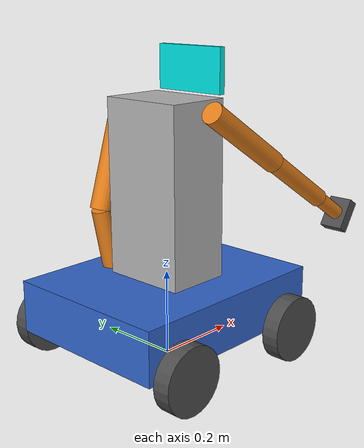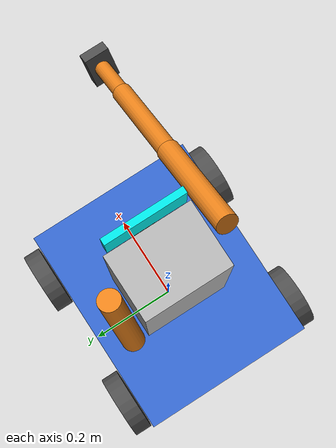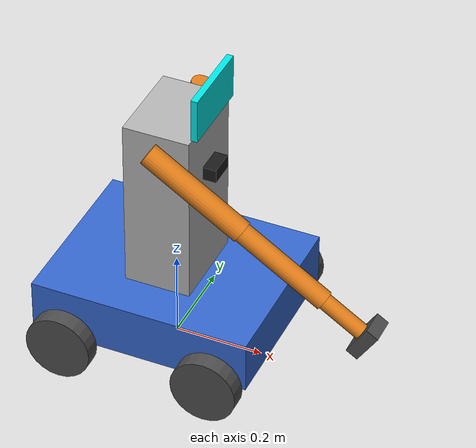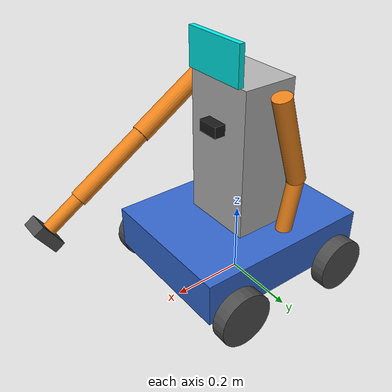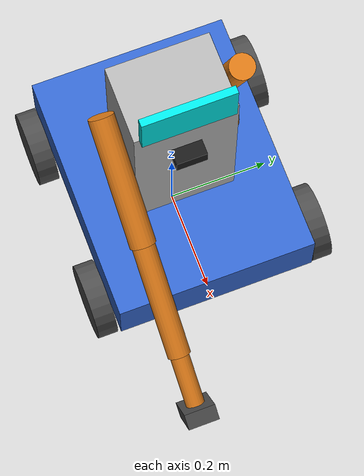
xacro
<?xml version="1.0"?>
<robot xmlns:xacro="http://www.ros.org/wiki/xacro" name="tidybot">

  <!-- ==================== PROPERTIES ==================== -->
  <!-- Base dimensions (meters) -->
  <xacro:property name="base_length" value="0.50"/>
  <xacro:property name="base_width"  value="0.40"/>
  <xacro:property name="base_height" value="0.12"/>
  <xacro:property name="base_mass"   value="8.0"/>

  <!-- Wheel dimensions -->
  <xacro:property name="wheel_radius" value="0.075"/>
  <xacro:property name="wheel_width"  value="0.04"/>
  <xacro:property name="wheel_mass"   value="0.5"/>

  <!-- Wheel placement -->
  <xacro:property name="wheel_x_offset" value="0.17"/>
  <xacro:property name="wheel_y_offset" value="${base_width/2 + wheel_width/2 + 0.005}"/>
  <xacro:property name="wheel_z_offset" value="${-base_height/2}"/>

  <!-- Torso dimensions -->
  <xacro:property name="torso_width"  value="0.20"/>
  <xacro:property name="torso_depth"  value="0.15"/>
  <xacro:property name="torso_height" value="0.40"/>
  <xacro:property name="torso_mass"   value="3.0"/>

  <!-- Arm link dimensions -->
  <xacro:property name="upper_arm_length" value="0.25"/>
  <xacro:property name="upper_arm_radius" value="0.025"/>
  <xacro:property name="upper_arm_mass"   value="0.8"/>

  <xacro:property name="forearm_length" value="0.22"/>
  <xacro:property name="forearm_radius" value="0.022"/>
  <xacro:property name="forearm_mass"   value="0.6"/>

  <xacro:property name="wrist_link_length" value="0.10"/>
  <xacro:property name="wrist_link_radius" value="0.018"/>
  <xacro:property name="wrist_link_mass"   value="0.3"/>

  <!-- Gripper dimensions -->
  <xacro:property name="gripper_length" value="0.08"/>
  <xacro:property name="gripper_width"  value="0.06"/>
  <xacro:property name="gripper_height" value="0.03"/>
  <xacro:property name="gripper_mass"   value="0.2"/>

  <!-- Face panel -->
  <xacro:property name="face_width"  value="0.18"/>
  <xacro:property name="face_height" value="0.10"/>
  <xacro:property name="face_depth"  value="0.015"/>
  <xacro:property name="face_mass"   value="0.15"/>

  <!-- Colors -->
  <material name="dark_gray">
    <color rgba="0.3 0.3 0.3 1.0"/>
  </material>
  <material name="light_gray">
    <color rgba="0.7 0.7 0.7 1.0"/>
  </material>
  <material name="blue">
    <color rgba="0.2 0.4 0.8 1.0"/>
  </material>
  <material name="black">
    <color rgba="0.1 0.1 0.1 1.0"/>
  </material>
  <material name="orange">
    <color rgba="0.9 0.5 0.1 1.0"/>
  </material>
  <material name="white">
    <color rgba="0.95 0.95 0.95 1.0"/>
  </material>
  <material name="cyan_glow">
    <color rgba="0.0 0.9 0.9 1.0"/>
  </material>

  <!-- ==================== MACROS ==================== -->

  <!-- Box inertia macro -->
  <xacro:macro name="box_inertia" params="m w d h">
    <inertial>
      <mass value="${m}"/>
      <inertia ixx="${m*(h*h+d*d)/12}" ixy="0" ixz="0"
               iyy="${m*(w*w+h*h)/12}" iyz="0"
               izz="${m*(w*w+d*d)/12}"/>
    </inertial>
  </xacro:macro>

  <!-- Cylinder inertia macro -->
  <xacro:macro name="cylinder_inertia" params="m r l">
    <inertial>
      <mass value="${m}"/>
      <inertia ixx="${m*(3*r*r+l*l)/12}" ixy="0" ixz="0"
               iyy="${m*(3*r*r+l*l)/12}" iyz="0"
               izz="${m*r*r/2}"/>
    </inertial>
  </xacro:macro>

  <!-- Wheel macro -->
  <xacro:macro name="wheel" params="name x_pos y_pos">
    <link name="${name}_wheel_link">
      <visual>
        <geometry>
          <cylinder radius="${wheel_radius}" length="${wheel_width}"/>
        </geometry>
        <material name="dark_gray"/>
      </visual>
      <collision>
        <geometry>
          <cylinder radius="${wheel_radius}" length="${wheel_width}"/>
        </geometry>
        <surface>
          <friction>
            <ode>
              <mu>1.0</mu>
              <mu2>0.8</mu2>
            </ode>
          </friction>
        </surface>
      </collision>
      <xacro:cylinder_inertia m="${wheel_mass}" r="${wheel_radius}" l="${wheel_width}"/>
    </link>

    <joint name="${name}_wheel_joint" type="continuous">
      <parent link="base_link"/>
      <child link="${name}_wheel_link"/>
      <origin xyz="${x_pos} ${y_pos} ${wheel_z_offset}" rpy="${-pi/2} 0 0"/>
      <axis xyz="0 0 1"/>
      <dynamics damping="0.1" friction="0.05"/>
    </joint>
  </xacro:macro>

  <!-- ==================== BASE LINK ==================== -->
  <link name="base_footprint"/>

  <link name="base_link">
    <visual>
      <geometry>
        <box size="${base_length} ${base_width} ${base_height}"/>
      </geometry>
      <material name="blue"/>
    </visual>
    <collision>
      <geometry>
        <box size="${base_length} ${base_width} ${base_height}"/>
      </geometry>
    </collision>
    <xacro:box_inertia m="${base_mass}" w="${base_width}" d="${base_length}" h="${base_height}"/>
  </link>

  <joint name="base_footprint_joint" type="fixed">
    <parent link="base_footprint"/>
    <child link="base_link"/>
    <origin xyz="0 0 ${wheel_radius + base_height/2}" rpy="0 0 0"/>
  </joint>

  <!-- ==================== WHEELS ==================== -->
  <xacro:wheel name="front_left"  x_pos="${wheel_x_offset}"  y_pos="${wheel_y_offset}"/>
  <xacro:wheel name="front_right" x_pos="${wheel_x_offset}"  y_pos="${-wheel_y_offset}"/>
  <xacro:wheel name="rear_left"   x_pos="${-wheel_x_offset}" y_pos="${wheel_y_offset}"/>
  <xacro:wheel name="rear_right"  x_pos="${-wheel_x_offset}" y_pos="${-wheel_y_offset}"/>

  <!-- ==================== TORSO ==================== -->
  <link name="torso_link">
    <visual>
      <origin xyz="0 0 ${torso_height/2}"/>
      <geometry>
        <box size="${torso_depth} ${torso_width} ${torso_height}"/>
      </geometry>
      <material name="light_gray"/>
    </visual>
    <collision>
      <origin xyz="0 0 ${torso_height/2}"/>
      <geometry>
        <box size="${torso_depth} ${torso_width} ${torso_height}"/>
      </geometry>
    </collision>
    <inertial>
      <origin xyz="0 0 ${torso_height/2}"/>
      <mass value="${torso_mass}"/>
      <inertia ixx="${torso_mass*(torso_height*torso_height+torso_depth*torso_depth)/12}" ixy="0" ixz="0"
               iyy="${torso_mass*(torso_width*torso_width+torso_height*torso_height)/12}" iyz="0"
               izz="${torso_mass*(torso_width*torso_width+torso_depth*torso_depth)/12}"/>
    </inertial>
  </link>

  <joint name="torso_joint" type="fixed">
    <parent link="base_link"/>
    <child link="torso_link"/>
    <origin xyz="0 0 ${base_height/2}" rpy="0 0 0"/>
  </joint>

  <!-- ==================== FACE PANEL (LED Display) ==================== -->
  <link name="face_panel_link">
    <visual>
      <geometry>
        <box size="${face_depth} ${face_width} ${face_height}"/>
      </geometry>
      <material name="cyan_glow"/>
    </visual>
    <collision>
      <geometry>
        <box size="${face_depth} ${face_width} ${face_height}"/>
      </geometry>
    </collision>
    <xacro:box_inertia m="${face_mass}" w="${face_width}" d="${face_depth}" h="${face_height}"/>
  </link>

  <joint name="face_panel_joint" type="fixed">
    <parent link="torso_link"/>
    <child link="face_panel_link"/>
    <origin xyz="${torso_depth/2 + face_depth/2} 0 ${torso_height + face_height/2 + 0.005}" rpy="0 0 0"/>
  </joint>

  <!-- ==================== RIGHT ARM (3-DOF Actuated) ==================== -->
  <!-- Shoulder joint -->
  <link name="right_upper_arm_link">
    <visual>
      <origin xyz="0 0 ${-upper_arm_length/2}"/>
      <geometry>
        <cylinder radius="${upper_arm_radius}" length="${upper_arm_length}"/>
      </geometry>
      <material name="orange"/>
    </visual>
    <collision>
      <origin xyz="0 0 ${-upper_arm_length/2}"/>
      <geometry>
        <cylinder radius="${upper_arm_radius}" length="${upper_arm_length}"/>
      </geometry>
    </collision>
    <inertial>
      <origin xyz="0 0 ${-upper_arm_length/2}"/>
      <mass value="${upper_arm_mass}"/>
      <inertia ixx="${upper_arm_mass*(3*upper_arm_radius*upper_arm_radius+upper_arm_length*upper_arm_length)/12}" ixy="0" ixz="0"
               iyy="${upper_arm_mass*(3*upper_arm_radius*upper_arm_radius+upper_arm_length*upper_arm_length)/12}" iyz="0"
               izz="${upper_arm_mass*upper_arm_radius*upper_arm_radius/2}"/>
    </inertial>
  </link>

  <joint name="right_shoulder_joint" type="revolute">
    <parent link="torso_link"/>
    <child link="right_upper_arm_link"/>
    <origin xyz="0 ${-torso_width/2 - upper_arm_radius - 0.01} ${torso_height - 0.02}" rpy="0 -1.0 0"/>
    <axis xyz="0 1 0"/>
    <limit lower="-1.57" upper="2.57" effort="20.0" velocity="1.0"/>
    <dynamics damping="1.0" friction="0.2"/>
  </joint>

  <!-- Elbow joint -->
  <link name="right_forearm_link">
    <visual>
      <origin xyz="0 0 ${-forearm_length/2}"/>
      <geometry>
        <cylinder radius="${forearm_radius}" length="${forearm_length}"/>
      </geometry>
      <material name="orange"/>
    </visual>
    <collision>
      <origin xyz="0 0 ${-forearm_length/2}"/>
      <geometry>
        <cylinder radius="${forearm_radius}" length="${forearm_length}"/>
      </geometry>
    </collision>
    <inertial>
      <origin xyz="0 0 ${-forearm_length/2}"/>
      <mass value="${forearm_mass}"/>
      <inertia ixx="${forearm_mass*(3*forearm_radius*forearm_radius+forearm_length*forearm_length)/12}" ixy="0" ixz="0"
               iyy="${forearm_mass*(3*forearm_radius*forearm_radius+forearm_length*forearm_length)/12}" iyz="0"
               izz="${forearm_mass*forearm_radius*forearm_radius/2}"/>
    </inertial>
  </link>

  <joint name="right_elbow_joint" type="revolute">
    <parent link="right_upper_arm_link"/>
    <child link="right_forearm_link"/>
    <origin xyz="0 0 ${-upper_arm_length}" rpy="0 0 0"/>
    <axis xyz="0 1 0"/>
    <limit lower="-2.35" upper="2.35" effort="15.0" velocity="1.0"/>
    <dynamics damping="0.8" friction="0.15"/>
  </joint>

  <!-- Wrist joint -->
  <link name="right_wrist_link">
    <visual>
      <origin xyz="0 0 ${-wrist_link_length/2}"/>
      <geometry>
        <cylinder radius="${wrist_link_radius}" length="${wrist_link_length}"/>
      </geometry>
      <material name="orange"/>
    </visual>
    <collision>
      <origin xyz="0 0 ${-wrist_link_length/2}"/>
      <geometry>
        <cylinder radius="${wrist_link_radius}" length="${wrist_link_length}"/>
      </geometry>
    </collision>
    <inertial>
      <origin xyz="0 0 ${-wrist_link_length/2}"/>
      <mass value="${wrist_link_mass}"/>
      <inertia ixx="${wrist_link_mass*(3*wrist_link_radius*wrist_link_radius+wrist_link_length*wrist_link_length)/12}" ixy="0" ixz="0"
               iyy="${wrist_link_mass*(3*wrist_link_radius*wrist_link_radius+wrist_link_length*wrist_link_length)/12}" iyz="0"
               izz="${wrist_link_mass*wrist_link_radius*wrist_link_radius/2}"/>
    </inertial>
  </link>

  <joint name="right_wrist_joint" type="revolute">
    <parent link="right_forearm_link"/>
    <child link="right_wrist_link"/>
    <origin xyz="0 0 ${-forearm_length}" rpy="0 0 0"/>
    <axis xyz="0 1 0"/>
    <limit lower="-1.57" upper="1.57" effort="10.0" velocity="1.5"/>
    <dynamics damping="0.5" friction="0.1"/>
  </joint>

  <!-- End-effector (flat plate, fixed to wrist) -->
  <link name="right_gripper_link">
    <visual>
      <origin xyz="0 0 ${-gripper_height/2}"/>
      <geometry>
        <box size="${gripper_length} ${gripper_width} ${gripper_height}"/>
      </geometry>
      <material name="dark_gray"/>
    </visual>
    <collision>
      <origin xyz="0 0 ${-gripper_height/2}"/>
      <geometry>
        <box size="${gripper_length} ${gripper_width} ${gripper_height}"/>
      </geometry>
    </collision>
    <xacro:box_inertia m="${gripper_mass}" w="${gripper_width}" d="${gripper_length}" h="${gripper_height}"/>
  </link>

  <joint name="right_gripper_joint" type="fixed">
    <parent link="right_wrist_link"/>
    <child link="right_gripper_link"/>
    <origin xyz="0 0 ${-wrist_link_length}" rpy="0 0 0"/>
  </joint>

  <!-- ==================== LEFT ARM (Cosmetic/Static) ==================== -->
  <link name="left_upper_arm_link">
    <visual>
      <origin xyz="0 0 ${-upper_arm_length/2}"/>
      <geometry>
        <cylinder radius="${upper_arm_radius}" length="${upper_arm_length}"/>
      </geometry>
      <material name="orange"/>
    </visual>
    <collision>
      <origin xyz="0 0 ${-upper_arm_length/2}"/>
      <geometry>
        <cylinder radius="${upper_arm_radius}" length="${upper_arm_length}"/>
      </geometry>
    </collision>
    <inertial>
      <origin xyz="0 0 ${-upper_arm_length/2}"/>
      <mass value="${upper_arm_mass}"/>
      <inertia ixx="${upper_arm_mass*(3*upper_arm_radius*upper_arm_radius+upper_arm_length*upper_arm_length)/12}" ixy="0" ixz="0"
               iyy="${upper_arm_mass*(3*upper_arm_radius*upper_arm_radius+upper_arm_length*upper_arm_length)/12}" iyz="0"
               izz="${upper_arm_mass*upper_arm_radius*upper_arm_radius/2}"/>
    </inertial>
  </link>

  <joint name="left_shoulder_joint" type="fixed">
    <parent link="torso_link"/>
    <child link="left_upper_arm_link"/>
    <origin xyz="0 ${torso_width/2 + upper_arm_radius + 0.01} ${torso_height - 0.02}" rpy="0 0.3 0"/>
  </joint>

  <link name="left_forearm_link">
    <visual>
      <origin xyz="0 0 ${-forearm_length/2}"/>
      <geometry>
        <cylinder radius="${forearm_radius}" length="${forearm_length}"/>
      </geometry>
      <material name="orange"/>
    </visual>
    <collision>
      <origin xyz="0 0 ${-forearm_length/2}"/>
      <geometry>
        <cylinder radius="${forearm_radius}" length="${forearm_length}"/>
      </geometry>
    </collision>
    <inertial>
      <origin xyz="0 0 ${-forearm_length/2}"/>
      <mass value="${forearm_mass}"/>
      <inertia ixx="${forearm_mass*(3*forearm_radius*forearm_radius+forearm_length*forearm_length)/12}" ixy="0" ixz="0"
               iyy="${forearm_mass*(3*forearm_radius*forearm_radius+forearm_length*forearm_length)/12}" iyz="0"
               izz="${forearm_mass*forearm_radius*forearm_radius/2}"/>
    </inertial>
  </link>

  <joint name="left_elbow_joint" type="fixed">
    <parent link="left_upper_arm_link"/>
    <child link="left_forearm_link"/>
    <origin xyz="0 0 ${-upper_arm_length}" rpy="0 -0.5 0"/>
  </joint>

  <link name="left_hand_link">
    <visual>
      <origin xyz="0 0 ${-gripper_height/2}"/>
      <geometry>
        <box size="${gripper_length} ${gripper_width} ${gripper_height}"/>
      </geometry>
      <material name="dark_gray"/>
    </visual>
    <collision>
      <origin xyz="0 0 ${-gripper_height/2}"/>
      <geometry>
        <box size="${gripper_length} ${gripper_width} ${gripper_height}"/>
      </geometry>
    </collision>
    <xacro:box_inertia m="${gripper_mass}" w="${gripper_width}" d="${gripper_length}" h="${gripper_height}"/>
  </link>

  <joint name="left_hand_joint" type="fixed">
    <parent link="left_forearm_link"/>
    <child link="left_hand_link"/>
    <origin xyz="0 0 ${-forearm_length}" rpy="0 0 0"/>
  </joint>

  <!-- ==================== CAMERA (on torso, facing forward) ==================== -->
  <link name="camera_link">
    <visual>
      <geometry>
        <box size="0.03 0.06 0.03"/>
      </geometry>
      <material name="black"/>
    </visual>
    <collision>
      <geometry>
        <box size="0.03 0.06 0.03"/>
      </geometry>
    </collision>
    <xacro:box_inertia m="0.05" w="0.06" d="0.03" h="0.03"/>
  </link>

  <joint name="camera_joint" type="fixed">
    <parent link="torso_link"/>
    <child link="camera_link"/>
    <origin xyz="${torso_depth/2 + 0.015} 0 ${torso_height * 0.7}" rpy="0 0 0"/>
  </joint>

  <link name="camera_optical_frame"/>
  <joint name="camera_optical_joint" type="fixed">
    <parent link="camera_link"/>
    <child link="camera_optical_frame"/>
    <origin xyz="0 0 0" rpy="${-pi/2} 0 ${-pi/2}"/>
  </joint>

  <!-- ==================== LIDAR (on top of base) ==================== -->
  <link name="lidar_link">
    <visual>
      <geometry>
        <cylinder radius="0.035" length="0.04"/>
      </geometry>
      <material name="black"/>
    </visual>
    <collision>
      <geometry>
        <cylinder radius="0.035" length="0.04"/>
      </geometry>
    </collision>
    <xacro:cylinder_inertia m="0.1" r="0.035" l="0.04"/>
  </link>

  <joint name="lidar_joint" type="fixed">
    <parent link="base_link"/>
    <child link="lidar_link"/>
    <origin xyz="0.0 0 ${base_height/2 + 0.02}" rpy="0 0 0"/>
  </joint>

  <!-- ==================== IMU (inside base) ==================== -->
  <link name="imu_link">
    <visual>
      <geometry>
        <box size="0.02 0.02 0.01"/>
      </geometry>
      <material name="black"/>
    </visual>
    <xacro:box_inertia m="0.01" w="0.02" d="0.02" h="0.01"/>
  </link>

  <joint name="imu_joint" type="fixed">
    <parent link="base_link"/>
    <child link="imu_link"/>
    <origin xyz="0 0 0" rpy="0 0 0"/>
  </joint>

  <!-- ==================== GAZEBO PLUGINS ==================== -->
  <gazebo>
    <!-- Skid-steer drive (4 wheels) -->
    <plugin filename="ignition-gazebo-diff-drive-system" name="ignition::gazebo::systems::DiffDrive">
      <left_joint>front_left_wheel_joint</left_joint>
      <left_joint>rear_left_wheel_joint</left_joint>
      <right_joint>front_right_wheel_joint</right_joint>
      <right_joint>rear_right_wheel_joint</right_joint>
      <wheel_separation>${2 * wheel_y_offset}</wheel_separation>
      <wheel_radius>${wheel_radius}</wheel_radius>
      <max_linear_acceleration>2.5</max_linear_acceleration>
      <max_angular_acceleration>2.0</max_angular_acceleration>
      <max_linear_velocity>0.8</max_linear_velocity>
      <max_angular_velocity>1.0</max_angular_velocity>
      <topic>cmd_vel</topic>
      <odom_topic>odom</odom_topic>
      <tf_topic>odom_tf</tf_topic>
      <frame_id>odom</frame_id>
      <child_frame_id>base_footprint</child_frame_id>
      <odom_publish_frequency>30</odom_publish_frequency>
    </plugin>

    <!-- Joint state publisher -->
    <plugin filename="ignition-gazebo-joint-state-publisher-system" name="ignition::gazebo::systems::JointStatePublisher">
      <topic>joint_states</topic>
      <joint_name>front_left_wheel_joint</joint_name>
      <joint_name>front_right_wheel_joint</joint_name>
      <joint_name>rear_left_wheel_joint</joint_name>
      <joint_name>rear_right_wheel_joint</joint_name>
      <joint_name>right_shoulder_joint</joint_name>
      <joint_name>right_elbow_joint</joint_name>
      <joint_name>right_wrist_joint</joint_name>
    </plugin>

    <!-- Arm joint position controllers -->
    <plugin filename="ignition-gazebo-joint-position-controller-system" name="ignition::gazebo::systems::JointPositionController">
      <joint_name>right_shoulder_joint</joint_name>
      <topic>right_shoulder_cmd</topic>
      <p_gain>30.0</p_gain>
      <i_gain>0.5</i_gain>
      <d_gain>5.0</d_gain>
      <cmd_max>20.0</cmd_max>
      <cmd_min>-20.0</cmd_min>
    </plugin>

    <plugin filename="ignition-gazebo-joint-position-controller-system" name="ignition::gazebo::systems::JointPositionController">
      <joint_name>right_elbow_joint</joint_name>
      <topic>right_elbow_cmd</topic>
      <p_gain>25.0</p_gain>
      <i_gain>0.5</i_gain>
      <d_gain>4.0</d_gain>
      <cmd_max>15.0</cmd_max>
      <cmd_min>-15.0</cmd_min>
    </plugin>

    <plugin filename="ignition-gazebo-joint-position-controller-system" name="ignition::gazebo::systems::JointPositionController">
      <joint_name>right_wrist_joint</joint_name>
      <topic>right_wrist_cmd</topic>
      <p_gain>15.0</p_gain>
      <i_gain>0.3</i_gain>
      <d_gain>3.0</d_gain>
      <cmd_max>10.0</cmd_max>
      <cmd_min>-10.0</cmd_min>
    </plugin>
    <!-- Ground truth pose publisher (publishes world poses of all links) -->
    <plugin filename="ignition-gazebo-pose-publisher-system" name="ignition::gazebo::systems::PosePublisher">
      <publish_link_pose>true</publish_link_pose>
      <publish_collision_pose>false</publish_collision_pose>
      <publish_visual_pose>false</publish_visual_pose>
      <publish_sensor_pose>false</publish_sensor_pose>
      <publish_nested_model_pose>false</publish_nested_model_pose>
      <use_pose_vector_msg>true</use_pose_vector_msg>
      <update_frequency>30</update_frequency>
    </plugin>
  </gazebo>

  <!-- Camera sensor -->
  <gazebo reference="camera_link">
    <sensor name="camera_sensor" type="camera">
      <always_on>true</always_on>
      <update_rate>15</update_rate>
      <topic>camera/image_raw</topic>
      <ignition_frame_id>camera_link</ignition_frame_id>
      <camera>
        <horizontal_fov>1.39626</horizontal_fov>
        <image>
          <width>640</width>
          <height>480</height>
          <format>R8G8B8</format>
        </image>
        <clip>
          <near>0.1</near>
          <far>10.0</far>
        </clip>
      </camera>
    </sensor>
  </gazebo>

  <!-- LiDAR sensor -->
  <gazebo reference="lidar_link">
    <sensor name="lidar_sensor" type="gpu_lidar">
      <always_on>true</always_on>
      <update_rate>10</update_rate>
      <topic>scan</topic>
      <ignition_frame_id>lidar_link</ignition_frame_id>
      <lidar>
        <scan>
          <horizontal>
            <samples>360</samples>
            <resolution>1</resolution>
            <min_angle>-3.14159</min_angle>
            <max_angle>3.14159</max_angle>
          </horizontal>
          <vertical>
            <samples>1</samples>
            <resolution>1</resolution>
            <min_angle>0</min_angle>
            <max_angle>0</max_angle>
          </vertical>
        </scan>
        <range>
          <min>0.12</min>
          <max>8.0</max>
          <resolution>0.01</resolution>
        </range>
      </lidar>
    </sensor>
  </gazebo>

  <!-- Wheel friction/surface properties -->
  <gazebo reference="front_left_wheel_link">
    <mu1>1.0</mu1>
    <mu2>0.8</mu2>
  </gazebo>
  <gazebo reference="front_right_wheel_link">
    <mu1>1.0</mu1>
    <mu2>0.8</mu2>
  </gazebo>
  <gazebo reference="rear_left_wheel_link">
    <mu1>1.0</mu1>
    <mu2>0.8</mu2>
  </gazebo>
  <gazebo reference="rear_right_wheel_link">
    <mu1>1.0</mu1>
    <mu2>0.8</mu2>
  </gazebo>

  <!-- IMU sensor -->
  <gazebo reference="imu_link">
    <sensor name="imu_sensor" type="imu">
      <always_on>true</always_on>
      <update_rate>50</update_rate>
      <topic>imu</topic>
      <ignition_frame_id>imu_link</ignition_frame_id>
    </sensor>
  </gazebo>

</robot>
